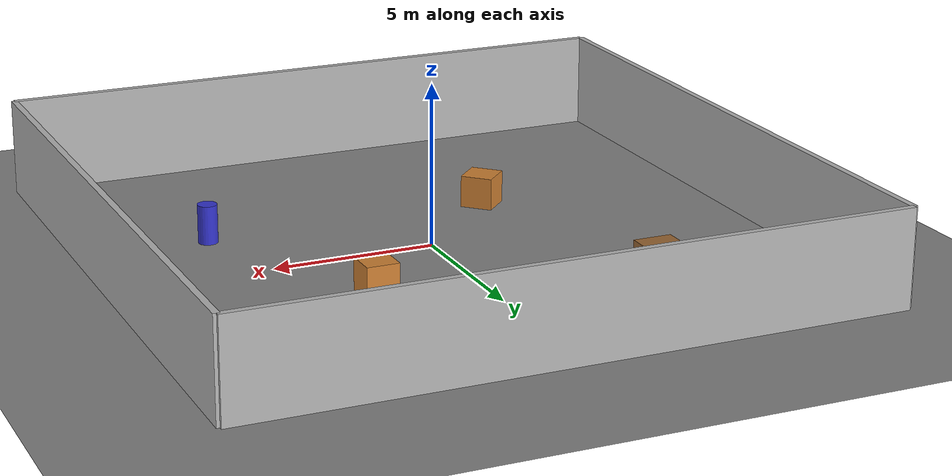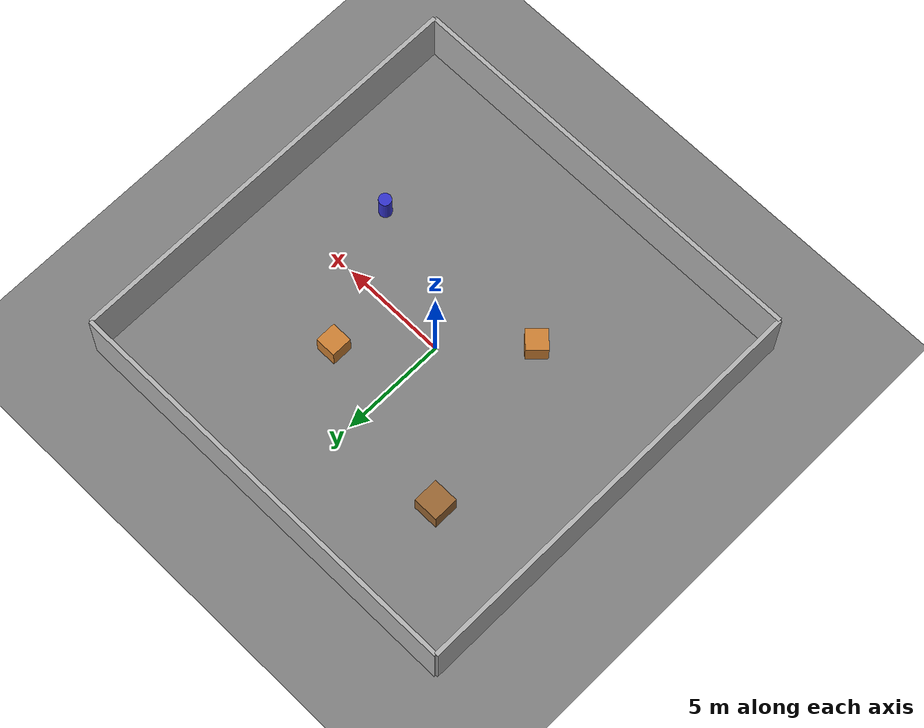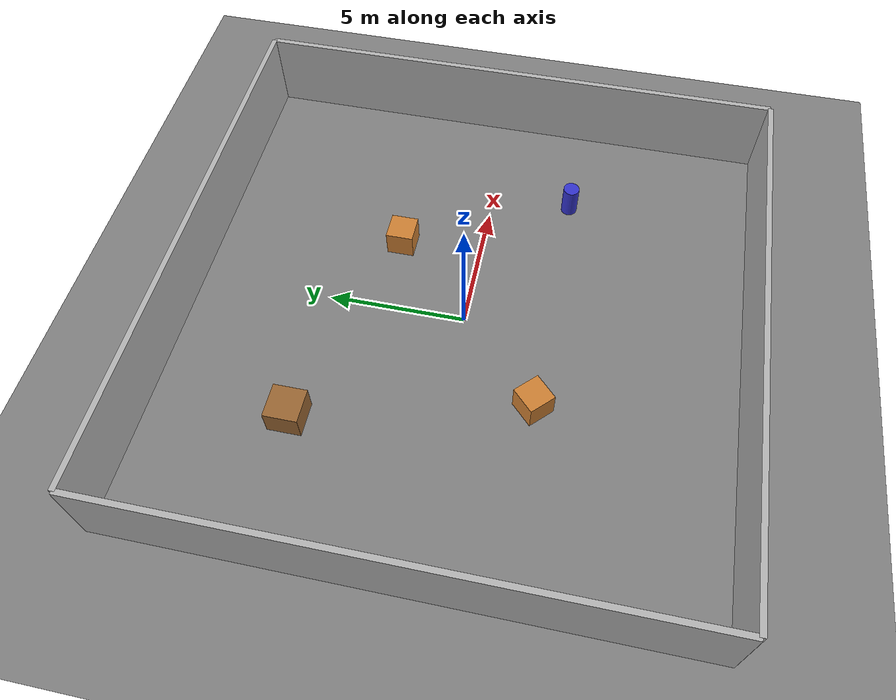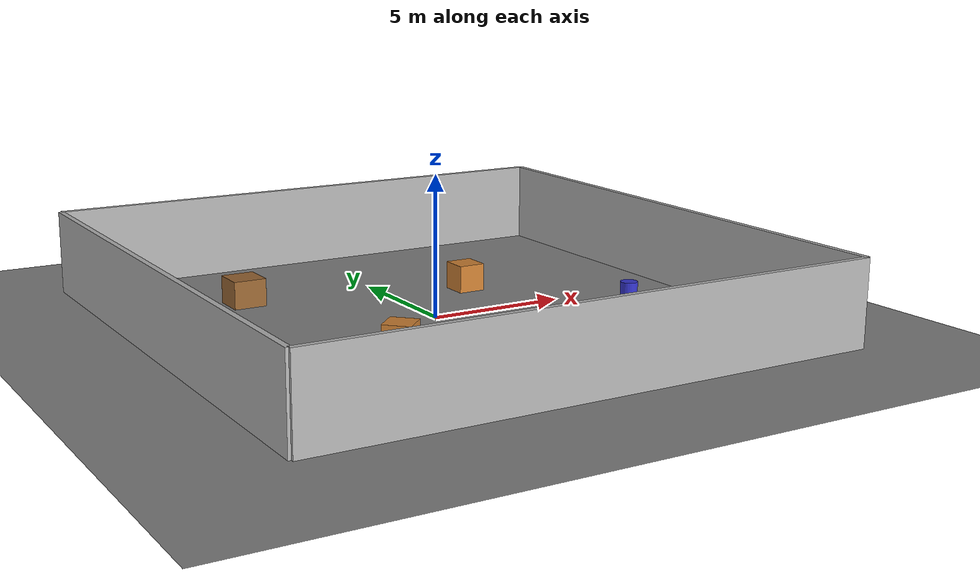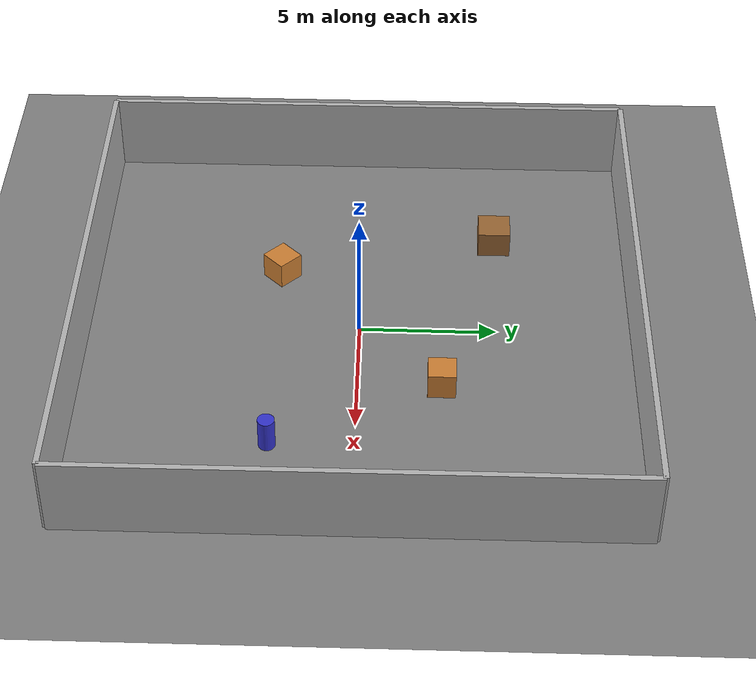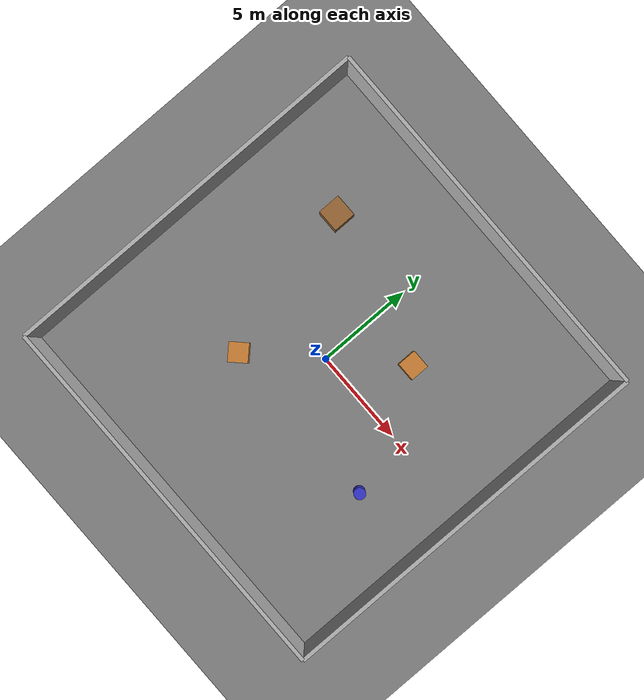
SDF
<?xml version="1.0"?>
<sdf version="1.8">
  <world name="custom_warehouse">

    <!-- ========== Physics Configuration ========== -->
    <physics type="ode">
      <max_step_size>0.001</max_step_size>
      <real_time_factor>1.0</real_time_factor>
      <real_time_update_rate>1000</real_time_update_rate>

      <ode>
        <solver>
          <type>quick</type>
          <iters>50</iters>
          <sor>1.3</sor>
        </solver>

        <constraints>
          <cfm>0.0</cfm>
          <erp>0.2</erp>
          <contact_max_correcting_vel>100</contact_max_correcting_vel>
          <contact_surface_layer>0.001</contact_surface_layer>
        </constraints>
      </ode>
    </physics>

    <!-- ========== Scene Configuration ========== -->
    <scene>
      <ambient>0.4 0.4 0.4 1</ambient>
      <background>0.7 0.7 0.7 1</background>
      <shadows>true</shadows>
      <grid>false</grid>
    </scene>

    <!-- ========== Lighting ========== -->

    <!-- Sun (main directional light) -->
    <light type="directional" name="sun">
      <cast_shadows>true</cast_shadows>
      <pose>0 0 10 0 0 0</pose>
      <diffuse>0.8 0.8 0.8 1</diffuse>
      <specular>0.2 0.2 0.2 1</specular>
      <attenuation>
        <range>1000</range>
        <constant>0.9</constant>
        <linear>0.01</linear>
        <quadratic>0.001</quadratic>
      </attenuation>
      <direction>-0.5 0.1 -0.9</direction>
    </light>

    <!-- Overhead warehouse lights -->
    <light type="point" name="light_1">
      <pose>5 5 4 0 0 0</pose>
      <diffuse>1 1 1 1</diffuse>
      <specular>0.1 0.1 0.1 1</specular>
      <attenuation>
        <range>20</range>
        <constant>0.5</constant>
        <linear>0.01</linear>
        <quadratic>0.001</quadratic>
      </attenuation>
      <cast_shadows>false</cast_shadows>
    </light>

    <light type="point" name="light_2">
      <pose>-5 5 4 0 0 0</pose>
      <diffuse>1 1 1 1</diffuse>
      <specular>0.1 0.1 0.1 1</specular>
      <attenuation>
        <range>20</range>
        <constant>0.5</constant>
      </attenuation>
      <cast_shadows>false</cast_shadows>
    </light>

    <light type="point" name="light_3">
      <pose>5 -5 4 0 0 0</pose>
      <diffuse>1 1 1 1</diffuse>
      <specular>0.1 0.1 0.1 1</specular>
      <attenuation>
        <range>20</range>
      </attenuation>
    </light>

    <light type="point" name="light_4">
      <pose>-5 -5 4 0 0 0</pose>
      <diffuse>1 1 1 1</diffuse>
      <specular>0.1 0.1 0.1 1</specular>
      <attenuation>
        <range>20</range>
      </attenuation>
    </light>

    <!-- ========== Ground Plane ========== -->
    <model name="ground_plane">
      <static>true</static>
      <link name="link">
        <collision name="collision">
          <geometry>
            <plane>
              <normal>0 0 1</normal>
              <size>100 100</size>
            </plane>
          </geometry>
          <surface>
            <friction>
              <ode>
                <mu>100</mu>
                <mu2>50</mu2>
              </ode>
            </friction>
            <contact>
              <ode>
                <kp>1000000.0</kp>
                <kd>1.0</kd>
              </ode>
            </contact>
          </surface>
        </collision>
        <visual name="visual">
          <geometry>
            <plane>
              <normal>0 0 1</normal>
              <size>100 100</size>
            </plane>
          </geometry>
          <material>
            <ambient>0.5 0.5 0.5 1</ambient>
            <diffuse>0.5 0.5 0.5 1</diffuse>
            <specular>0.1 0.1 0.1 1</specular>
          </material>
        </visual>
      </link>
    </model>

    <!-- ========== Warehouse Walls ========== -->

    <!-- North wall -->
    <model name="wall_north">
      <static>true</static>
      <pose>0 10 1.5 0 0 0</pose>
      <link name="link">
        <collision name="collision">
          <geometry>
            <box>
              <size>20 0.2 3</size>
            </box>
          </geometry>
        </collision>
        <visual name="visual">
          <geometry>
            <box>
              <size>20 0.2 3</size>
            </box>
          </geometry>
          <material>
            <ambient>0.7 0.7 0.7 1</ambient>
            <diffuse>0.7 0.7 0.7 1</diffuse>
          </material>
        </visual>
      </link>
    </model>

    <!-- South wall -->
    <model name="wall_south">
      <static>true</static>
      <pose>0 -10 1.5 0 0 0</pose>
      <link name="link">
        <collision name="collision">
          <geometry>
            <box>
              <size>20 0.2 3</size>
            </box>
          </geometry>
        </collision>
        <visual name="visual">
          <geometry>
            <box>
              <size>20 0.2 3</size>
            </box>
          </geometry>
          <material>
            <ambient>0.7 0.7 0.7 1</ambient>
            <diffuse>0.7 0.7 0.7 1</diffuse>
          </material>
        </visual>
      </link>
    </model>

    <!-- East wall -->
    <model name="wall_east">
      <static>true</static>
      <pose>10 0 1.5 0 0 0</pose>
      <link name="link">
        <collision name="collision">
          <geometry>
            <box>
              <size>0.2 20 3</size>
            </box>
          </geometry>
        </collision>
        <visual name="visual">
          <geometry>
            <box>
              <size>0.2 20 3</size>
            </box>
          </geometry>
          <material>
            <ambient>0.7 0.7 0.7 1</ambient>
            <diffuse>0.7 0.7 0.7 1</diffuse>
          </material>
        </visual>
      </link>
    </model>

    <!-- West wall -->
    <model name="wall_west">
      <static>true</static>
      <pose>-10 0 1.5 0 0 0</pose>
      <link name="link">
        <collision name="collision">
          <geometry>
            <box>
              <size>0.2 20 3</size>
            </box>
          </geometry>
        </collision>
        <visual name="visual">
          <geometry>
            <box>
              <size>0.2 20 3</size>
            </box>
          </geometry>
          <material>
            <ambient>0.7 0.7 0.7 1</ambient>
            <diffuse>0.7 0.7 0.7 1</diffuse>
          </material>
        </visual>
      </link>
    </model>

    <!-- ========== Obstacles ========== -->

    <!-- Storage boxes -->
    <model name="box_1">
      <static>true</static>
      <pose>3 3 0.5 0 0 0</pose>
      <link name="link">
        <collision name="collision">
          <geometry>
            <box>
              <size>1 1 1</size>
            </box>
          </geometry>
        </collision>
        <visual name="visual">
          <geometry>
            <box>
              <size>1 1 1</size>
            </box>
          </geometry>
          <material>
            <ambient>0.8 0.5 0.2 1</ambient>
            <diffuse>0.8 0.5 0.2 1</diffuse>
          </material>
        </visual>
      </link>
    </model>

    <model name="box_2">
      <static>true</static>
      <pose>-3 -3 0.5 0 0 0.785</pose>
      <link name="link">
        <collision name="collision">
          <geometry>
            <box>
              <size>1 1 1</size>
            </box>
          </geometry>
        </collision>
        <visual name="visual">
          <geometry>
            <box>
              <size>1 1 1</size>
            </box>
          </geometry>
          <material>
            <ambient>0.8 0.5 0.2 1</ambient>
            <diffuse>0.8 0.5 0.2 1</diffuse>
          </material>
        </visual>
      </link>
    </model>

    <model name="box_3">
      <static>true</static>
      <pose>-5 5 0.5 0 0 0</pose>
      <link name="link">
        <collision name="collision">
          <geometry>
            <box>
              <size>1.2 1.2 1</size>
            </box>
          </geometry>
        </collision>
        <visual name="visual">
          <geometry>
            <box>
              <size>1.2 1.2 1</size>
            </box>
          </geometry>
          <material>
            <ambient>0.6 0.4 0.2 1</ambient>
            <diffuse>0.6 0.4 0.2 1</diffuse>
          </material>
        </visual>
      </link>
    </model>

    <!-- Cylindrical obstacles (barrels) -->
    <model name="barrel_1">
      <static>true</static>
      <pose>6 -3 0.6 0 0 0</pose>
      <link name="link">
        <collision name="collision">
          <geometry>
            <cylinder>
              <radius>0.3</radius>
              <length>1.2</length>
            </cylinder>
          </geometry>
        </collision>
        <visual name="visual">
          <geometry>
            <cylinder>
              <radius>0.3</radius>
              <length>1.2</length>
            </cylinder>
          </geometry>
          <material>
            <ambient>0.2 0.2 0.8 1</ambient>
            <diffuse>0.2 0.2 0.8 1</diffuse>
          </material>
        </visual>
      </link>
    </model>

    <!-- ========== ROS 2 Plugins ========== -->

    <!-- State publisher -->
    <plugin name="gazebo_ros_state" filename="libgazebo_ros_state.so">
      <ros>
        <namespace>/gazebo</namespace>
      </ros>
      <update_rate>10.0</update_rate>
    </plugin>

  </world>
</sdf>
